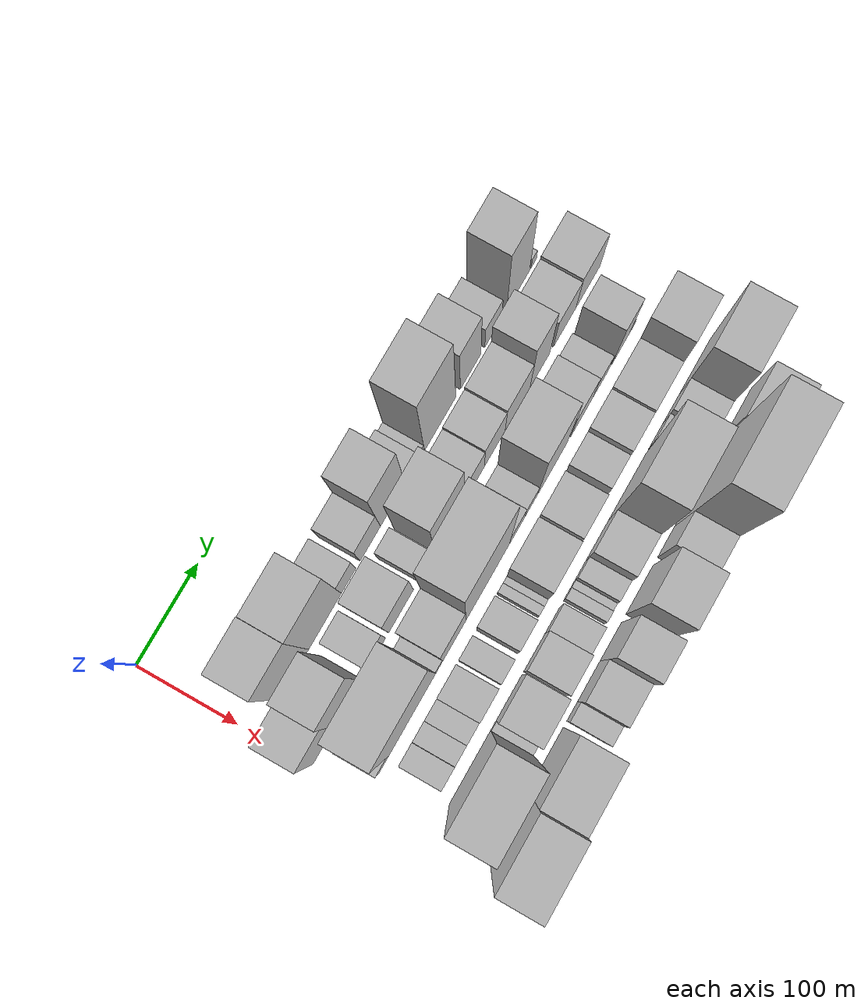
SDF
<sdf version="1.6">
 <world name="default">
  <model name="building_26">
   <static>1</static>
   <pose>100.0000 59.8532 0 0.000000 0.000000 0.000000</pose>
   <link name="link">
    <pose>0 0 72.00 0 0 0</pose>
    <collision name="collision"><geometry><box><size>40.0000 48.5433 144.0000</size></box></geometry></collision>
    <visual name="visual">
     <cast_shadows>0</cast_shadows>
     <geometry><box><size>40.0000 48.5433 144.0000</size></box></geometry>
     <material>
      <script>
       <uri>model://HANNAS_wall/materials/scripts</uri>
       <uri>model://HANNAS_wall/materials/textures</uri>
       <name>vrc/HANNAS_wall</name>
      </script>
     </material>
    </visual>
   </link>
  </model>
  <model name="building_27">
   <static>1</static>
   <pose>100.0000 111.6172 0 0.000000 0.000000 0.000000</pose>
   <link name="link">
    <pose>0 0 70.50 0 0 0</pose>
    <collision name="collision"><geometry><box><size>40.0000 54.9846 141.0000</size></box></geometry></collision>
    <visual name="visual">
     <cast_shadows>0</cast_shadows>
     <geometry><box><size>40.0000 54.9846 141.0000</size></box></geometry>
     <material>
      <script>
       <uri>model://HANNAS_wall/materials/scripts</uri>
       <uri>model://HANNAS_wall/materials/textures</uri>
       <name>vrc/HANNAS_wall</name>
      </script>
     </material>
    </visual>
   </link>
  </model>
  <model name="building_28">
   <static>1</static>
   <pose>100.0000 151.5574 0 0.000000 0.000000 0.000000</pose>
   <link name="link">
    <pose>0 0 24.00 0 0 0</pose>
    <collision name="collision"><geometry><box><size>40.0000 24.8957 48.0000</size></box></geometry></collision>
    <visual name="visual">
     <cast_shadows>0</cast_shadows>
     <geometry><box><size>40.0000 24.8957 48.0000</size></box></geometry>
     <material>
      <script>
       <uri>model://HANNAS_wall/materials/scripts</uri>
       <uri>model://HANNAS_wall/materials/textures</uri>
       <name>vrc/HANNAS_wall</name>
      </script>
     </material>
    </visual>
   </link>
  </model>
  <model name="building_29">
   <static>1</static>
   <pose>100.0000 188.3205 0 0.000000 0.000000 0.000000</pose>
   <link name="link">
    <pose>0 0 30.00 0 0 0</pose>
    <collision name="collision"><geometry><box><size>40.0000 34.6305 60.0000</size></box></geometry></collision>
    <visual name="visual">
     <cast_shadows>0</cast_shadows>
     <geometry><box><size>40.0000 34.6305 60.0000</size></box></geometry>
     <material>
      <script>
       <uri>model://HANNAS_wall/materials/scripts</uri>
       <uri>model://HANNAS_wall/materials/textures</uri>
       <name>vrc/HANNAS_wall</name>
      </script>
     </material>
    </visual>
   </link>
  </model>
  <model name="building_30">
   <static>1</static>
   <pose>100.0000 226.8834 0 0.000000 0.000000 0.000000</pose>
   <link name="link">
    <pose>0 0 67.50 0 0 0</pose>
    <collision name="collision"><geometry><box><size>40.0000 42.4952 135.0000</size></box></geometry></collision>
    <visual name="visual">
     <cast_shadows>0</cast_shadows>
     <geometry><box><size>40.0000 42.4952 135.0000</size></box></geometry>
     <material>
      <script>
       <uri>model://HANNAS_wall/materials/scripts</uri>
       <uri>model://HANNAS_wall/materials/textures</uri>
       <name>vrc/HANNAS_wall</name>
      </script>
     </material>
    </visual>
   </link>
  </model>
  <model name="building_31">
   <static>1</static>
   <pose>100.0000 259.4990 0 0.000000 0.000000 0.000000</pose>
   <link name="link">
    <pose>0 0 19.50 0 0 0</pose>
    <collision name="collision"><geometry><box><size>40.0000 22.7361 39.0000</size></box></geometry></collision>
    <visual name="visual">
     <cast_shadows>0</cast_shadows>
     <geometry><box><size>40.0000 22.7361 39.0000</size></box></geometry>
     <material>
      <script>
       <uri>model://HANNAS_wall/materials/scripts</uri>
       <uri>model://HANNAS_wall/materials/textures</uri>
       <name>vrc/HANNAS_wall</name>
      </script>
     </material>
    </visual>
   </link>
  </model>
  <model name="building_32">
   <static>1</static>
   <pose>100.0000 276.2242 0 0.000000 0.000000 0.000000</pose>
   <link name="link">
    <pose>0 0 12.00 0 0 0</pose>
    <collision name="collision"><geometry><box><size>40.0000 10.7142 24.0000</size></box></geometry></collision>
    <visual name="visual">
     <cast_shadows>0</cast_shadows>
     <geometry><box><size>40.0000 10.7142 24.0000</size></box></geometry>
     <material>
      <script>
       <uri>model://HANNAS_wall/materials/scripts</uri>
       <uri>model://HANNAS_wall/materials/textures</uri>
       <name>vrc/HANNAS_wall</name>
      </script>
     </material>
    </visual>
   </link>
  </model>
  <model name="building_33">
   <static>1</static>
   <pose>100.0000 308.8887 0 0.000000 0.000000 0.000000</pose>
   <link name="link">
    <pose>0 0 81.00 0 0 0</pose>
    <collision name="collision"><geometry><box><size>40.0000 54.6149 162.0000</size></box></geometry></collision>
    <visual name="visual">
     <cast_shadows>0</cast_shadows>
     <geometry><box><size>40.0000 54.6149 162.0000</size></box></geometry>
     <material>
      <script>
       <uri>model://HANNAS_wall/materials/scripts</uri>
       <uri>model://HANNAS_wall/materials/textures</uri>
       <name>vrc/HANNAS_wall</name>
      </script>
     </material>
    </visual>
   </link>
  </model>
  <model name="building_34">
   <static>1</static>
   <pose>100.0000 362.2740 0 0.000000 0.000000 0.000000</pose>
   <link name="link">
    <pose>0 0 52.50 0 0 0</pose>
    <collision name="collision"><geometry><box><size>40.0000 36.1556 105.0000</size></box></geometry></collision>
    <visual name="visual">
     <cast_shadows>0</cast_shadows>
     <geometry><box><size>40.0000 36.1556 105.0000</size></box></geometry>
     <material>
      <script>
       <uri>model://HANNAS_wall/materials/scripts</uri>
       <uri>model://HANNAS_wall/materials/textures</uri>
       <name>vrc/HANNAS_wall</name>
      </script>
     </material>
    </visual>
   </link>
  </model>
  <model name="building_35">
   <static>1</static>
   <pose>100.0000 402.2554 0 0.000000 0.000000 0.000000</pose>
   <link name="link">
    <pose>0 0 25.50 0 0 0</pose>
    <collision name="collision"><geometry><box><size>40.0000 29.8073 51.0000</size></box></geometry></collision>
    <visual name="visual">
     <cast_shadows>0</cast_shadows>
     <geometry><box><size>40.0000 29.8073 51.0000</size></box></geometry>
     <material>
      <script>
       <uri>model://HANNAS_wall/materials/scripts</uri>
       <uri>model://HANNAS_wall/materials/textures</uri>
       <name>vrc/HANNAS_wall</name>
      </script>
     </material>
    </visual>
   </link>
  </model>
  <model name="building_36">
   <static>1</static>
   <pose>100.0000 446.6684 0 0.000000 0.000000 0.000000</pose>
   <link name="link">
    <pose>0 0 66.00 0 0 0</pose>
    <collision name="collision"><geometry><box><size>40.0000 41.0188 132.0000</size></box></geometry></collision>
    <visual name="visual">
     <cast_shadows>0</cast_shadows>
     <geometry><box><size>40.0000 41.0188 132.0000</size></box></geometry>
     <material>
      <script>
       <uri>model://HANNAS_wall/materials/scripts</uri>
       <uri>model://HANNAS_wall/materials/textures</uri>
       <name>vrc/HANNAS_wall</name>
      </script>
     </material>
    </visual>
   </link>
  </model>
  <model name="building_37">
   <static>1</static>
   <pose>100.0000 474.8791 0 0.000000 0.000000 0.000000</pose>
   <link name="link">
    <pose>0 0 10.50 0 0 0</pose>
    <collision name="collision"><geometry><box><size>40.0000 9.4025 21.0000</size></box></geometry></collision>
    <visual name="visual">
     <cast_shadows>0</cast_shadows>
     <geometry><box><size>40.0000 9.4025 21.0000</size></box></geometry>
     <material>
      <script>
       <uri>model://HANNAS_wall/materials/scripts</uri>
       <uri>model://HANNAS_wall/materials/textures</uri>
       <name>vrc/HANNAS_wall</name>
      </script>
     </material>
    </visual>
   </link>
  </model>
  <model name="building_71">
   <static>1</static>
   <pose>152.0000 21.6704 0 0.000000 0.000000 0.000000</pose>
   <link name="link">
    <pose>0 0 55.50 0 0 0</pose>
    <collision name="collision"><geometry><box><size>40.0000 37.0842 111.0000</size></box></geometry></collision>
    <visual name="visual">
     <cast_shadows>0</cast_shadows>
     <geometry><box><size>40.0000 37.0842 111.0000</size></box></geometry>
     <material>
      <script>
       <uri>model://HANNAS_wall/materials/scripts</uri>
       <uri>model://HANNAS_wall/materials/textures</uri>
       <name>vrc/HANNAS_wall</name>
      </script>
     </material>
    </visual>
   </link>
  </model>
  <model name="building_72">
   <static>1</static>
   <pose>152.0000 62.4371 0 0.000000 0.000000 0.000000</pose>
   <link name="link">
    <pose>0 0 70.50 0 0 0</pose>
    <collision name="collision"><geometry><box><size>40.0000 44.4492 141.0000</size></box></geometry></collision>
    <visual name="visual">
     <cast_shadows>0</cast_shadows>
     <geometry><box><size>40.0000 44.4492 141.0000</size></box></geometry>
     <material>
      <script>
       <uri>model://HANNAS_wall/materials/scripts</uri>
       <uri>model://HANNAS_wall/materials/textures</uri>
       <name>vrc/HANNAS_wall</name>
      </script>
     </material>
    </visual>
   </link>
  </model>
  <model name="building_73">
   <static>1</static>
   <pose>152.0000 109.7994 0 0.000000 0.000000 0.000000</pose>
   <link name="link">
    <pose>0 0 28.50 0 0 0</pose>
    <collision name="collision"><geometry><box><size>40.0000 30.2754 57.0000</size></box></geometry></collision>
    <visual name="visual">
     <cast_shadows>0</cast_shadows>
     <geometry><box><size>40.0000 30.2754 57.0000</size></box></geometry>
     <material>
      <script>
       <uri>model://HANNAS_wall/materials/scripts</uri>
       <uri>model://HANNAS_wall/materials/textures</uri>
       <name>vrc/HANNAS_wall</name>
      </script>
     </material>
    </visual>
   </link>
  </model>
  <model name="building_74">
   <static>1</static>
   <pose>152.0000 151.1428 0 0.000000 0.000000 0.000000</pose>
   <link name="link">
    <pose>0 0 42.00 0 0 0</pose>
    <collision name="collision"><geometry><box><size>40.0000 42.4115 84.0000</size></box></geometry></collision>
    <visual name="visual">
     <cast_shadows>0</cast_shadows>
     <geometry><box><size>40.0000 42.4115 84.0000</size></box></geometry>
     <material>
      <script>
       <uri>model://HANNAS_wall/materials/scripts</uri>
       <uri>model://HANNAS_wall/materials/textures</uri>
       <name>vrc/HANNAS_wall</name>
      </script>
     </material>
    </visual>
   </link>
  </model>
  <model name="building_75">
   <static>1</static>
   <pose>152.0000 192.7440 0 0.000000 0.000000 0.000000</pose>
   <link name="link">
    <pose>0 0 21.00 0 0 0</pose>
    <collision name="collision"><geometry><box><size>40.0000 24.7909 42.0000</size></box></geometry></collision>
    <visual name="visual">
     <cast_shadows>0</cast_shadows>
     <geometry><box><size>40.0000 24.7909 42.0000</size></box></geometry>
     <material>
      <script>
       <uri>model://HANNAS_wall/materials/scripts</uri>
       <uri>model://HANNAS_wall/materials/textures</uri>
       <name>vrc/HANNAS_wall</name>
      </script>
     </material>
    </visual>
   </link>
  </model>
  <model name="building_76">
   <static>1</static>
   <pose>152.0000 235.0382 0 0.000000 0.000000 0.000000</pose>
   <link name="link">
    <pose>0 0 69.00 0 0 0</pose>
    <collision name="collision"><geometry><box><size>40.0000 51.7974 138.0000</size></box></geometry></collision>
    <visual name="visual">
     <cast_shadows>0</cast_shadows>
     <geometry><box><size>40.0000 51.7974 138.0000</size></box></geometry>
     <material>
      <script>
       <uri>model://HANNAS_wall/materials/scripts</uri>
       <uri>model://HANNAS_wall/materials/textures</uri>
       <name>vrc/HANNAS_wall</name>
      </script>
     </material>
    </visual>
   </link>
  </model>
  <model name="building_77">
   <static>1</static>
   <pose>152.0000 277.9632 0 0.000000 0.000000 0.000000</pose>
   <link name="link">
    <pose>0 0 31.50 0 0 0</pose>
    <collision name="collision"><geometry><box><size>40.0000 34.0527 63.0000</size></box></geometry></collision>
    <visual name="visual">
     <cast_shadows>0</cast_shadows>
     <geometry><box><size>40.0000 34.0527 63.0000</size></box></geometry>
     <material>
      <script>
       <uri>model://HANNAS_wall/materials/scripts</uri>
       <uri>model://HANNAS_wall/materials/textures</uri>
       <name>vrc/HANNAS_wall</name>
      </script>
     </material>
    </visual>
   </link>
  </model>
  <model name="building_78">
   <static>1</static>
   <pose>152.0000 313.0679 0 0.000000 0.000000 0.000000</pose>
   <link name="link">
    <pose>0 0 34.50 0 0 0</pose>
    <collision name="collision"><geometry><box><size>40.0000 36.1565 69.0000</size></box></geometry></collision>
    <visual name="visual">
     <cast_shadows>0</cast_shadows>
     <geometry><box><size>40.0000 36.1565 69.0000</size></box></geometry>
     <material>
      <script>
       <uri>model://HANNAS_wall/materials/scripts</uri>
       <uri>model://HANNAS_wall/materials/textures</uri>
       <name>vrc/HANNAS_wall</name>
      </script>
     </material>
    </visual>
   </link>
  </model>
  <model name="building_79">
   <static>1</static>
   <pose>152.0000 353.2291 0 0.000000 0.000000 0.000000</pose>
   <link name="link">
    <pose>0 0 37.50 0 0 0</pose>
    <collision name="collision"><geometry><box><size>40.0000 44.1659 75.0000</size></box></geometry></collision>
    <visual name="visual">
     <cast_shadows>0</cast_shadows>
     <geometry><box><size>40.0000 44.1659 75.0000</size></box></geometry>
     <material>
      <script>
       <uri>model://HANNAS_wall/materials/scripts</uri>
       <uri>model://HANNAS_wall/materials/textures</uri>
       <name>vrc/HANNAS_wall</name>
      </script>
     </material>
    </visual>
   </link>
  </model>
  <model name="building_80">
   <static>1</static>
   <pose>152.0000 392.7489 0 0.000000 0.000000 0.000000</pose>
   <link name="link">
    <pose>0 0 57.00 0 0 0</pose>
    <collision name="collision"><geometry><box><size>40.0000 34.8737 114.0000</size></box></geometry></collision>
    <visual name="visual">
     <cast_shadows>0</cast_shadows>
     <geometry><box><size>40.0000 34.8737 114.0000</size></box></geometry>
     <material>
      <script>
       <uri>model://HANNAS_wall/materials/scripts</uri>
       <uri>model://HANNAS_wall/materials/textures</uri>
       <name>vrc/HANNAS_wall</name>
      </script>
     </material>
    </visual>
   </link>
  </model>
  <model name="building_81">
   <static>1</static>
   <pose>152.0000 437.3306 0 0.000000 0.000000 0.000000</pose>
   <link name="link">
    <pose>0 0 34.50 0 0 0</pose>
    <collision name="collision"><geometry><box><size>40.0000 40.2897 69.0000</size></box></geometry></collision>
    <visual name="visual">
     <cast_shadows>0</cast_shadows>
     <geometry><box><size>40.0000 40.2897 69.0000</size></box></geometry>
     <material>
      <script>
       <uri>model://HANNAS_wall/materials/scripts</uri>
       <uri>model://HANNAS_wall/materials/textures</uri>
       <name>vrc/HANNAS_wall</name>
      </script>
     </material>
    </visual>
   </link>
  </model>
  <model name="building_82">
   <static>1</static>
   <pose>152.0000 479.6560 0 0.000000 0.000000 0.000000</pose>
   <link name="link">
    <pose>0 0 37.50 0 0 0</pose>
    <collision name="collision"><geometry><box><size>40.0000 44.3611 75.0000</size></box></geometry></collision>
    <visual name="visual">
     <cast_shadows>0</cast_shadows>
     <geometry><box><size>40.0000 44.3611 75.0000</size></box></geometry>
     <material>
      <script>
       <uri>model://HANNAS_wall/materials/scripts</uri>
       <uri>model://HANNAS_wall/materials/textures</uri>
       <name>vrc/HANNAS_wall</name>
      </script>
     </material>
    </visual>
   </link>
  </model>
  <model name="building_121">
   <static>1</static>
   <pose>204.0000 31.6830 0 0.000000 0.000000 0.000000</pose>
   <link name="link">
    <pose>0 0 18.00 0 0 0</pose>
    <collision name="collision"><geometry><box><size>40.0000 18.2940 36.0000</size></box></geometry></collision>
    <visual name="visual">
     <cast_shadows>0</cast_shadows>
     <geometry><box><size>40.0000 18.2940 36.0000</size></box></geometry>
     <material>
      <script>
       <uri>model://HANNAS_wall/materials/scripts</uri>
       <uri>model://HANNAS_wall/materials/textures</uri>
       <name>vrc/HANNAS_wall</name>
      </script>
     </material>
    </visual>
   </link>
  </model>
  <model name="building_122">
   <static>1</static>
   <pose>204.0000 80.5087 0 0.000000 0.000000 0.000000</pose>
   <link name="link">
    <pose>0 0 102.00 0 0 0</pose>
    <collision name="collision"><geometry><box><size>40.0000 79.3574 204.0000</size></box></geometry></collision>
    <visual name="visual">
     <cast_shadows>0</cast_shadows>
     <geometry><box><size>40.0000 79.3574 204.0000</size></box></geometry>
     <material>
      <script>
       <uri>model://HANNAS_wall/materials/scripts</uri>
       <uri>model://HANNAS_wall/materials/textures</uri>
       <name>vrc/HANNAS_wall</name>
      </script>
     </material>
    </visual>
   </link>
  </model>
  <model name="building_123">
   <static>1</static>
   <pose>204.0000 126.0882 0 0.000000 0.000000 0.000000</pose>
   <link name="link">
    <pose>0 0 12.00 0 0 0</pose>
    <collision name="collision"><geometry><box><size>40.0000 11.8014 24.0000</size></box></geometry></collision>
    <visual name="visual">
     <cast_shadows>0</cast_shadows>
     <geometry><box><size>40.0000 11.8014 24.0000</size></box></geometry>
     <material>
      <script>
       <uri>model://HANNAS_wall/materials/scripts</uri>
       <uri>model://HANNAS_wall/materials/textures</uri>
       <name>vrc/HANNAS_wall</name>
      </script>
     </material>
    </visual>
   </link>
  </model>
  <model name="building_124">
   <static>1</static>
   <pose>204.0000 151.6730 0 0.000000 0.000000 0.000000</pose>
   <link name="link">
    <pose>0 0 49.50 0 0 0</pose>
    <collision name="collision"><geometry><box><size>40.0000 39.3682 99.0000</size></box></geometry></collision>
    <visual name="visual">
     <cast_shadows>0</cast_shadows>
     <geometry><box><size>40.0000 39.3682 99.0000</size></box></geometry>
     <material>
      <script>
       <uri>model://HANNAS_wall/materials/scripts</uri>
       <uri>model://HANNAS_wall/materials/textures</uri>
       <name>vrc/HANNAS_wall</name>
      </script>
     </material>
    </visual>
   </link>
  </model>
  <model name="building_125">
   <static>1</static>
   <pose>204.0000 208.8136 0 0.000000 0.000000 0.000000</pose>
   <link name="link">
    <pose>0 0 112.50 0 0 0</pose>
    <collision name="collision"><geometry><box><size>40.0000 74.9130 225.0000</size></box></geometry></collision>
    <visual name="visual">
     <cast_shadows>0</cast_shadows>
     <geometry><box><size>40.0000 74.9130 225.0000</size></box></geometry>
     <material>
      <script>
       <uri>model://HANNAS_wall/materials/scripts</uri>
       <uri>model://HANNAS_wall/materials/textures</uri>
       <name>vrc/HANNAS_wall</name>
      </script>
     </material>
    </visual>
   </link>
  </model>
  <model name="building_126">
   <static>1</static>
   <pose>204.0000 259.9060 0 0.000000 0.000000 0.000000</pose>
   <link name="link">
    <pose>0 0 24.00 0 0 0</pose>
    <collision name="collision"><geometry><box><size>40.0000 27.2720 48.0000</size></box></geometry></collision>
    <visual name="visual">
     <cast_shadows>0</cast_shadows>
     <geometry><box><size>40.0000 27.2720 48.0000</size></box></geometry>
     <material>
      <script>
       <uri>model://HANNAS_wall/materials/scripts</uri>
       <uri>model://HANNAS_wall/materials/textures</uri>
       <name>vrc/HANNAS_wall</name>
      </script>
     </material>
    </visual>
   </link>
  </model>
  <model name="building_127">
   <static>1</static>
   <pose>204.0000 284.5124 0 0.000000 0.000000 0.000000</pose>
   <link name="link">
    <pose>0 0 21.00 0 0 0</pose>
    <collision name="collision"><geometry><box><size>40.0000 21.9408 42.0000</size></box></geometry></collision>
    <visual name="visual">
     <cast_shadows>0</cast_shadows>
     <geometry><box><size>40.0000 21.9408 42.0000</size></box></geometry>
     <material>
      <script>
       <uri>model://HANNAS_wall/materials/scripts</uri>
       <uri>model://HANNAS_wall/materials/textures</uri>
       <name>vrc/HANNAS_wall</name>
      </script>
     </material>
    </visual>
   </link>
  </model>
  <model name="building_128">
   <static>1</static>
   <pose>204.0000 321.7038 0 0.000000 0.000000 0.000000</pose>
   <link name="link">
    <pose>0 0 75.00 0 0 0</pose>
    <collision name="collision"><geometry><box><size>40.0000 52.4421 150.0000</size></box></geometry></collision>
    <visual name="visual">
     <cast_shadows>0</cast_shadows>
     <geometry><box><size>40.0000 52.4421 150.0000</size></box></geometry>
     <material>
      <script>
       <uri>model://HANNAS_wall/materials/scripts</uri>
       <uri>model://HANNAS_wall/materials/textures</uri>
       <name>vrc/HANNAS_wall</name>
      </script>
     </material>
    </visual>
   </link>
  </model>
  <model name="building_129">
   <static>1</static>
   <pose>204.0000 374.4119 0 0.000000 0.000000 0.000000</pose>
   <link name="link">
    <pose>0 0 34.50 0 0 0</pose>
    <collision name="collision"><geometry><box><size>40.0000 38.9741 69.0000</size></box></geometry></collision>
    <visual name="visual">
     <cast_shadows>0</cast_shadows>
     <geometry><box><size>40.0000 38.9741 69.0000</size></box></geometry>
     <material>
      <script>
       <uri>model://HANNAS_wall/materials/scripts</uri>
       <uri>model://HANNAS_wall/materials/textures</uri>
       <name>vrc/HANNAS_wall</name>
      </script>
     </material>
    </visual>
   </link>
  </model>
  <model name="building_130">
   <static>1</static>
   <pose>204.0000 408.0770 0 0.000000 0.000000 0.000000</pose>
   <link name="link">
    <pose>0 0 24.00 0 0 0</pose>
    <collision name="collision"><geometry><box><size>40.0000 28.3561 48.0000</size></box></geometry></collision>
    <visual name="visual">
     <cast_shadows>0</cast_shadows>
     <geometry><box><size>40.0000 28.3561 48.0000</size></box></geometry>
     <material>
      <script>
       <uri>model://HANNAS_wall/materials/scripts</uri>
       <uri>model://HANNAS_wall/materials/textures</uri>
       <name>vrc/HANNAS_wall</name>
      </script>
     </material>
    </visual>
   </link>
  </model>
  <model name="building_131">
   <static>1</static>
   <pose>204.0000 444.3280 0 0.000000 0.000000 0.000000</pose>
   <link name="link">
    <pose>0 0 49.50 0 0 0</pose>
    <collision name="collision"><geometry><box><size>40.0000 30.1457 99.0000</size></box></geometry></collision>
    <visual name="visual">
     <cast_shadows>0</cast_shadows>
     <geometry><box><size>40.0000 30.1457 99.0000</size></box></geometry>
     <material>
      <script>
       <uri>model://HANNAS_wall/materials/scripts</uri>
       <uri>model://HANNAS_wall/materials/textures</uri>
       <name>vrc/HANNAS_wall</name>
      </script>
     </material>
    </visual>
   </link>
  </model>
  <model name="building_132">
   <static>1</static>
   <pose>204.0000 463.6852 0 0.000000 0.000000 0.000000</pose>
   <link name="link">
    <pose>0 0 10.50 0 0 0</pose>
    <collision name="collision"><geometry><box><size>40.0000 8.5686 21.0000</size></box></geometry></collision>
    <visual name="visual">
     <cast_shadows>0</cast_shadows>
     <geometry><box><size>40.0000 8.5686 21.0000</size></box></geometry>
     <material>
      <script>
       <uri>model://HANNAS_wall/materials/scripts</uri>
       <uri>model://HANNAS_wall/materials/textures</uri>
       <name>vrc/HANNAS_wall</name>
      </script>
     </material>
    </visual>
   </link>
  </model>
  <model name="building_171">
   <static>1</static>
   <pose>256.0000 51.3563 0 0.000000 0.000000 0.000000</pose>
   <link name="link">
    <pose>0 0 21.00 0 0 0</pose>
    <collision name="collision"><geometry><box><size>40.0000 22.1200 42.0000</size></box></geometry></collision>
    <visual name="visual">
     <cast_shadows>0</cast_shadows>
     <geometry><box><size>40.0000 22.1200 42.0000</size></box></geometry>
     <material>
      <script>
       <uri>model://HANNAS_wall/materials/scripts</uri>
       <uri>model://HANNAS_wall/materials/textures</uri>
       <name>vrc/HANNAS_wall</name>
      </script>
     </material>
    </visual>
   </link>
  </model>
  <model name="building_172">
   <static>1</static>
   <pose>256.0000 72.2350 0 0.000000 0.000000 0.000000</pose>
   <link name="link">
    <pose>0 0 19.50 0 0 0</pose>
    <collision name="collision"><geometry><box><size>40.0000 19.6375 39.0000</size></box></geometry></collision>
    <visual name="visual">
     <cast_shadows>0</cast_shadows>
     <geometry><box><size>40.0000 19.6375 39.0000</size></box></geometry>
     <material>
      <script>
       <uri>model://HANNAS_wall/materials/scripts</uri>
       <uri>model://HANNAS_wall/materials/textures</uri>
       <name>vrc/HANNAS_wall</name>
      </script>
     </material>
    </visual>
   </link>
  </model>
  <model name="building_173">
   <static>1</static>
   <pose>256.0000 92.5784 0 0.000000 0.000000 0.000000</pose>
   <link name="link">
    <pose>0 0 19.50 0 0 0</pose>
    <collision name="collision"><geometry><box><size>40.0000 21.0493 39.0000</size></box></geometry></collision>
    <visual name="visual">
     <cast_shadows>0</cast_shadows>
     <geometry><box><size>40.0000 21.0493 39.0000</size></box></geometry>
     <material>
      <script>
       <uri>model://HANNAS_wall/materials/scripts</uri>
       <uri>model://HANNAS_wall/materials/textures</uri>
       <name>vrc/HANNAS_wall</name>
      </script>
     </material>
    </visual>
   </link>
  </model>
  <model name="building_174">
   <static>1</static>
   <pose>256.0000 118.8743 0 0.000000 0.000000 0.000000</pose>
   <link name="link">
    <pose>0 0 27.00 0 0 0</pose>
    <collision name="collision"><geometry><box><size>40.0000 31.5424 54.0000</size></box></geometry></collision>
    <visual name="visual">
     <cast_shadows>0</cast_shadows>
     <geometry><box><size>40.0000 31.5424 54.0000</size></box></geometry>
     <material>
      <script>
       <uri>model://HANNAS_wall/materials/scripts</uri>
       <uri>model://HANNAS_wall/materials/textures</uri>
       <name>vrc/HANNAS_wall</name>
      </script>
     </material>
    </visual>
   </link>
  </model>
  <model name="building_175">
   <static>1</static>
   <pose>256.0000 150.2202 0 0.000000 0.000000 0.000000</pose>
   <link name="link">
    <pose>0 0 22.50 0 0 0</pose>
    <collision name="collision"><geometry><box><size>40.0000 23.1495 45.0000</size></box></geometry></collision>
    <visual name="visual">
     <cast_shadows>0</cast_shadows>
     <geometry><box><size>40.0000 23.1495 45.0000</size></box></geometry>
     <material>
      <script>
       <uri>model://HANNAS_wall/materials/scripts</uri>
       <uri>model://HANNAS_wall/materials/textures</uri>
       <name>vrc/HANNAS_wall</name>
      </script>
     </material>
    </visual>
   </link>
  </model>
  <model name="building_176">
   <static>1</static>
   <pose>256.0000 183.4563 0 0.000000 0.000000 0.000000</pose>
   <link name="link">
    <pose>0 0 28.50 0 0 0</pose>
    <collision name="collision"><geometry><box><size>40.0000 29.3226 57.0000</size></box></geometry></collision>
    <visual name="visual">
     <cast_shadows>0</cast_shadows>
     <geometry><box><size>40.0000 29.3226 57.0000</size></box></geometry>
     <material>
      <script>
       <uri>model://HANNAS_wall/materials/scripts</uri>
       <uri>model://HANNAS_wall/materials/textures</uri>
       <name>vrc/HANNAS_wall</name>
      </script>
     </material>
    </visual>
   </link>
  </model>
  <model name="building_177">
   <static>1</static>
   <pose>256.0000 208.7952 0 0.000000 0.000000 0.000000</pose>
   <link name="link">
    <pose>0 0 10.50 0 0 0</pose>
    <collision name="collision"><geometry><box><size>40.0000 9.3552 21.0000</size></box></geometry></collision>
    <visual name="visual">
     <cast_shadows>0</cast_shadows>
     <geometry><box><size>40.0000 9.3552 21.0000</size></box></geometry>
     <material>
      <script>
       <uri>model://HANNAS_wall/materials/scripts</uri>
       <uri>model://HANNAS_wall/materials/textures</uri>
       <name>vrc/HANNAS_wall</name>
      </script>
     </material>
    </visual>
   </link>
  </model>
  <model name="building_178">
   <static>1</static>
   <pose>256.0000 217.0879 0 0.000000 0.000000 0.000000</pose>
   <link name="link">
    <pose>0 0 7.50 0 0 0</pose>
    <collision name="collision"><geometry><box><size>40.0000 7.2303 15.0000</size></box></geometry></collision>
    <visual name="visual">
     <cast_shadows>0</cast_shadows>
     <geometry><box><size>40.0000 7.2303 15.0000</size></box></geometry>
     <material>
      <script>
       <uri>model://HANNAS_wall/materials/scripts</uri>
       <uri>model://HANNAS_wall/materials/textures</uri>
       <name>vrc/HANNAS_wall</name>
      </script>
     </material>
    </visual>
   </link>
  </model>
  <model name="building_179">
   <static>1</static>
   <pose>256.0000 244.4377 0 0.000000 0.000000 0.000000</pose>
   <link name="link">
    <pose>0 0 40.50 0 0 0</pose>
    <collision name="collision"><geometry><box><size>40.0000 47.4692 81.0000</size></box></geometry></collision>
    <visual name="visual">
     <cast_shadows>0</cast_shadows>
     <geometry><box><size>40.0000 47.4692 81.0000</size></box></geometry>
     <material>
      <script>
       <uri>model://HANNAS_wall/materials/scripts</uri>
       <uri>model://HANNAS_wall/materials/textures</uri>
       <name>vrc/HANNAS_wall</name>
      </script>
     </material>
    </visual>
   </link>
  </model>
  <model name="building_180">
   <static>1</static>
   <pose>256.0000 292.7930 0 0.000000 0.000000 0.000000</pose>
   <link name="link">
    <pose>0 0 34.50 0 0 0</pose>
    <collision name="collision"><geometry><box><size>40.0000 41.2415 69.0000</size></box></geometry></collision>
    <visual name="visual">
     <cast_shadows>0</cast_shadows>
     <geometry><box><size>40.0000 41.2415 69.0000</size></box></geometry>
     <material>
      <script>
       <uri>model://HANNAS_wall/materials/scripts</uri>
       <uri>model://HANNAS_wall/materials/textures</uri>
       <name>vrc/HANNAS_wall</name>
      </script>
     </material>
    </visual>
   </link>
  </model>
  <model name="building_181">
   <static>1</static>
   <pose>256.0000 337.4040 0 0.000000 0.000000 0.000000</pose>
   <link name="link">
    <pose>0 0 28.50 0 0 0</pose>
    <collision name="collision"><geometry><box><size>40.0000 31.9804 57.0000</size></box></geometry></collision>
    <visual name="visual">
     <cast_shadows>0</cast_shadows>
     <geometry><box><size>40.0000 31.9804 57.0000</size></box></geometry>
     <material>
      <script>
       <uri>model://HANNAS_wall/materials/scripts</uri>
       <uri>model://HANNAS_wall/materials/textures</uri>
       <name>vrc/HANNAS_wall</name>
      </script>
     </material>
    </visual>
   </link>
  </model>
  <model name="building_182">
   <static>1</static>
   <pose>256.0000 371.7634 0 0.000000 0.000000 0.000000</pose>
   <link name="link">
    <pose>0 0 36.00 0 0 0</pose>
    <collision name="collision"><geometry><box><size>40.0000 36.7384 72.0000</size></box></geometry></collision>
    <visual name="visual">
     <cast_shadows>0</cast_shadows>
     <geometry><box><size>40.0000 36.7384 72.0000</size></box></geometry>
     <material>
      <script>
       <uri>model://HANNAS_wall/materials/scripts</uri>
       <uri>model://HANNAS_wall/materials/textures</uri>
       <name>vrc/HANNAS_wall</name>
      </script>
     </material>
    </visual>
   </link>
  </model>
  <model name="building_183">
   <static>1</static>
   <pose>256.0000 413.4472 0 0.000000 0.000000 0.000000</pose>
   <link name="link">
    <pose>0 0 39.00 0 0 0</pose>
    <collision name="collision"><geometry><box><size>40.0000 46.6291 78.0000</size></box></geometry></collision>
    <visual name="visual">
     <cast_shadows>0</cast_shadows>
     <geometry><box><size>40.0000 46.6291 78.0000</size></box></geometry>
     <material>
      <script>
       <uri>model://HANNAS_wall/materials/scripts</uri>
       <uri>model://HANNAS_wall/materials/textures</uri>
       <name>vrc/HANNAS_wall</name>
      </script>
     </material>
    </visual>
   </link>
  </model>
  <model name="building_184">
   <static>1</static>
   <pose>256.0000 458.1449 0 0.000000 0.000000 0.000000</pose>
   <link name="link">
    <pose>0 0 66.00 0 0 0</pose>
    <collision name="collision"><geometry><box><size>40.0000 42.7664 132.0000</size></box></geometry></collision>
    <visual name="visual">
     <cast_shadows>0</cast_shadows>
     <geometry><box><size>40.0000 42.7664 132.0000</size></box></geometry>
     <material>
      <script>
       <uri>model://HANNAS_wall/materials/scripts</uri>
       <uri>model://HANNAS_wall/materials/textures</uri>
       <name>vrc/HANNAS_wall</name>
      </script>
     </material>
    </visual>
   </link>
  </model>
  <model name="building_222">
   <static>1</static>
   <pose>308.0000 66.2620 0 0.000000 0.000000 0.000000</pose>
   <link name="link">
    <pose>0 0 111.00 0 0 0</pose>
    <collision name="collision"><geometry><box><size>40.0000 70.3853 222.0000</size></box></geometry></collision>
    <visual name="visual">
     <cast_shadows>0</cast_shadows>
     <geometry><box><size>40.0000 70.3853 222.0000</size></box></geometry>
     <material>
      <script>
       <uri>model://HANNAS_wall/materials/scripts</uri>
       <uri>model://HANNAS_wall/materials/textures</uri>
       <name>vrc/HANNAS_wall</name>
      </script>
     </material>
    </visual>
   </link>
  </model>
  <model name="building_223">
   <static>1</static>
   <pose>308.0000 106.1286 0 0.000000 0.000000 0.000000</pose>
   <link name="link">
    <pose>0 0 10.50 0 0 0</pose>
    <collision name="collision"><geometry><box><size>40.0000 9.3480 21.0000</size></box></geometry></collision>
    <visual name="visual">
     <cast_shadows>0</cast_shadows>
     <geometry><box><size>40.0000 9.3480 21.0000</size></box></geometry>
     <material>
      <script>
       <uri>model://HANNAS_wall/materials/scripts</uri>
       <uri>model://HANNAS_wall/materials/textures</uri>
       <name>vrc/HANNAS_wall</name>
      </script>
     </material>
    </visual>
   </link>
  </model>
  <model name="building_224">
   <static>1</static>
   <pose>308.0000 132.8977 0 0.000000 0.000000 0.000000</pose>
   <link name="link">
    <pose>0 0 42.00 0 0 0</pose>
    <collision name="collision"><geometry><box><size>40.0000 44.1903 84.0000</size></box></geometry></collision>
    <visual name="visual">
     <cast_shadows>0</cast_shadows>
     <geometry><box><size>40.0000 44.1903 84.0000</size></box></geometry>
     <material>
      <script>
       <uri>model://HANNAS_wall/materials/scripts</uri>
       <uri>model://HANNAS_wall/materials/textures</uri>
       <name>vrc/HANNAS_wall</name>
      </script>
     </material>
    </visual>
   </link>
  </model>
  <model name="building_225">
   <static>1</static>
   <pose>308.0000 176.4152 0 0.000000 0.000000 0.000000</pose>
   <link name="link">
    <pose>0 0 33.00 0 0 0</pose>
    <collision name="collision"><geometry><box><size>40.0000 36.8447 66.0000</size></box></geometry></collision>
    <visual name="visual">
     <cast_shadows>0</cast_shadows>
     <geometry><box><size>40.0000 36.8447 66.0000</size></box></geometry>
     <material>
      <script>
       <uri>model://HANNAS_wall/materials/scripts</uri>
       <uri>model://HANNAS_wall/materials/textures</uri>
       <name>vrc/HANNAS_wall</name>
      </script>
     </material>
    </visual>
   </link>
  </model>
  <model name="building_226">
   <static>1</static>
   <pose>308.0000 208.1064 0 0.000000 0.000000 0.000000</pose>
   <link name="link">
    <pose>0 0 22.50 0 0 0</pose>
    <collision name="collision"><geometry><box><size>40.0000 26.5377 45.0000</size></box></geometry></collision>
    <visual name="visual">
     <cast_shadows>0</cast_shadows>
     <geometry><box><size>40.0000 26.5377 45.0000</size></box></geometry>
     <material>
      <script>
       <uri>model://HANNAS_wall/materials/scripts</uri>
       <uri>model://HANNAS_wall/materials/textures</uri>
       <name>vrc/HANNAS_wall</name>
      </script>
     </material>
    </visual>
   </link>
  </model>
  <model name="building_227">
   <static>1</static>
   <pose>308.0000 232.8546 0 0.000000 0.000000 0.000000</pose>
   <link name="link">
    <pose>0 0 12.00 0 0 0</pose>
    <collision name="collision"><geometry><box><size>40.0000 10.9585 24.0000</size></box></geometry></collision>
    <visual name="visual">
     <cast_shadows>0</cast_shadows>
     <geometry><box><size>40.0000 10.9585 24.0000</size></box></geometry>
     <material>
      <script>
       <uri>model://HANNAS_wall/materials/scripts</uri>
       <uri>model://HANNAS_wall/materials/textures</uri>
       <name>vrc/HANNAS_wall</name>
      </script>
     </material>
    </visual>
   </link>
  </model>
  <model name="building_228">
   <static>1</static>
   <pose>308.0000 242.3555 0 0.000000 0.000000 0.000000</pose>
   <link name="link">
    <pose>0 0 9.00 0 0 0</pose>
    <collision name="collision"><geometry><box><size>40.0000 8.0434 18.0000</size></box></geometry></collision>
    <visual name="visual">
     <cast_shadows>0</cast_shadows>
     <geometry><box><size>40.0000 8.0434 18.0000</size></box></geometry>
     <material>
      <script>
       <uri>model://HANNAS_wall/materials/scripts</uri>
       <uri>model://HANNAS_wall/materials/textures</uri>
       <name>vrc/HANNAS_wall</name>
      </script>
     </material>
    </visual>
   </link>
  </model>
  <model name="building_229">
   <static>1</static>
   <pose>308.0000 256.4591 0 0.000000 0.000000 0.000000</pose>
   <link name="link">
    <pose>0 0 18.00 0 0 0</pose>
    <collision name="collision"><geometry><box><size>40.0000 20.1637 36.0000</size></box></geometry></collision>
    <visual name="visual">
     <cast_shadows>0</cast_shadows>
     <geometry><box><size>40.0000 20.1637 36.0000</size></box></geometry>
     <material>
      <script>
       <uri>model://HANNAS_wall/materials/scripts</uri>
       <uri>model://HANNAS_wall/materials/textures</uri>
       <name>vrc/HANNAS_wall</name>
      </script>
     </material>
    </visual>
   </link>
  </model>
  <model name="building_230">
   <static>1</static>
   <pose>308.0000 286.3737 0 0.000000 0.000000 0.000000</pose>
   <link name="link">
    <pose>0 0 34.50 0 0 0</pose>
    <collision name="collision"><geometry><box><size>40.0000 39.6655 69.0000</size></box></geometry></collision>
    <visual name="visual">
     <cast_shadows>0</cast_shadows>
     <geometry><box><size>40.0000 39.6655 69.0000</size></box></geometry>
     <material>
      <script>
       <uri>model://HANNAS_wall/materials/scripts</uri>
       <uri>model://HANNAS_wall/materials/textures</uri>
       <name>vrc/HANNAS_wall</name>
      </script>
     </material>
    </visual>
   </link>
  </model>
  <model name="building_231">
   <static>1</static>
   <pose>308.0000 340.2815 0 0.000000 0.000000 0.000000</pose>
   <link name="link">
    <pose>0 0 99.00 0 0 0</pose>
    <collision name="collision"><geometry><box><size>40.0000 68.1500 198.0000</size></box></geometry></collision>
    <visual name="visual">
     <cast_shadows>0</cast_shadows>
     <geometry><box><size>40.0000 68.1500 198.0000</size></box></geometry>
     <material>
      <script>
       <uri>model://HANNAS_wall/materials/scripts</uri>
       <uri>model://HANNAS_wall/materials/textures</uri>
       <name>vrc/HANNAS_wall</name>
      </script>
     </material>
    </visual>
   </link>
  </model>
  <model name="building_232">
   <static>1</static>
   <pose>308.0000 390.8756 0 0.000000 0.000000 0.000000</pose>
   <link name="link">
    <pose>0 0 22.50 0 0 0</pose>
    <collision name="collision"><geometry><box><size>40.0000 25.0383 45.0000</size></box></geometry></collision>
    <visual name="visual">
     <cast_shadows>0</cast_shadows>
     <geometry><box><size>40.0000 25.0383 45.0000</size></box></geometry>
     <material>
      <script>
       <uri>model://HANNAS_wall/materials/scripts</uri>
       <uri>model://HANNAS_wall/materials/textures</uri>
       <name>vrc/HANNAS_wall</name>
      </script>
     </material>
    </visual>
   </link>
  </model>
  <model name="building_233">
   <static>1</static>
   <pose>308.0000 418.5465 0 0.000000 0.000000 0.000000</pose>
   <link name="link">
    <pose>0 0 30.00 0 0 0</pose>
    <collision name="collision"><geometry><box><size>40.0000 30.3036 60.0000</size></box></geometry></collision>
    <visual name="visual">
     <cast_shadows>0</cast_shadows>
     <geometry><box><size>40.0000 30.3036 60.0000</size></box></geometry>
     <material>
      <script>
       <uri>model://HANNAS_wall/materials/scripts</uri>
       <uri>model://HANNAS_wall/materials/textures</uri>
       <name>vrc/HANNAS_wall</name>
      </script>
     </material>
    </visual>
   </link>
  </model>
  <model name="building_234">
   <static>1</static>
   <pose>308.0000 462.8063 0 0.000000 0.000000 0.000000</pose>
   <link name="link">
    <pose>0 0 75.00 0 0 0</pose>
    <collision name="collision"><geometry><box><size>40.0000 58.2160 150.0000</size></box></geometry></collision>
    <visual name="visual">
     <cast_shadows>0</cast_shadows>
     <geometry><box><size>40.0000 58.2160 150.0000</size></box></geometry>
     <material>
      <script>
       <uri>model://HANNAS_wall/materials/scripts</uri>
       <uri>model://HANNAS_wall/materials/textures</uri>
       <name>vrc/HANNAS_wall</name>
      </script>
     </material>
    </visual>
   </link>
  </model>
  <model name="building_270">
   <static>1</static>
   <pose>360.0000 40.7946 0 0.000000 0.000000 0.000000</pose>
   <link name="link">
    <pose>0 0 87.00 0 0 0</pose>
    <collision name="collision"><geometry><box><size>40.0000 65.8035 174.0000</size></box></geometry></collision>
    <visual name="visual">
     <cast_shadows>0</cast_shadows>
     <geometry><box><size>40.0000 65.8035 174.0000</size></box></geometry>
     <material>
      <script>
       <uri>model://HANNAS_wall/materials/scripts</uri>
       <uri>model://HANNAS_wall/materials/textures</uri>
       <name>vrc/HANNAS_wall</name>
      </script>
     </material>
    </visual>
   </link>
  </model>
  <model name="building_271">
   <static>1</static>
   <pose>360.0000 103.8154 0 0.000000 0.000000 0.000000</pose>
   <link name="link">
    <pose>0 0 78.00 0 0 0</pose>
    <collision name="collision"><geometry><box><size>40.0000 60.2380 156.0000</size></box></geometry></collision>
    <visual name="visual">
     <cast_shadows>0</cast_shadows>
     <geometry><box><size>40.0000 60.2380 156.0000</size></box></geometry>
     <material>
      <script>
       <uri>model://HANNAS_wall/materials/scripts</uri>
       <uri>model://HANNAS_wall/materials/textures</uri>
       <name>vrc/HANNAS_wall</name>
      </script>
     </material>
    </visual>
   </link>
  </model>
  <model name="building_272">
   <static>1</static>
   <pose>360.0000 149.3962 0 0.000000 0.000000 0.000000</pose>
   <link name="link">
    <pose>0 0 16.50 0 0 0</pose>
    <collision name="collision"><geometry><box><size>40.0000 18.9237 33.0000</size></box></geometry></collision>
    <visual name="visual">
     <cast_shadows>0</cast_shadows>
     <geometry><box><size>40.0000 18.9237 33.0000</size></box></geometry>
     <material>
      <script>
       <uri>model://HANNAS_wall/materials/scripts</uri>
       <uri>model://HANNAS_wall/materials/textures</uri>
       <name>vrc/HANNAS_wall</name>
      </script>
     </material>
    </visual>
   </link>
  </model>
  <model name="building_273">
   <static>1</static>
   <pose>360.0000 178.5382 0 0.000000 0.000000 0.000000</pose>
   <link name="link">
    <pose>0 0 34.50 0 0 0</pose>
    <collision name="collision"><geometry><box><size>40.0000 39.3603 69.0000</size></box></geometry></collision>
    <visual name="visual">
     <cast_shadows>0</cast_shadows>
     <geometry><box><size>40.0000 39.3603 69.0000</size></box></geometry>
     <material>
      <script>
       <uri>model://HANNAS_wall/materials/scripts</uri>
       <uri>model://HANNAS_wall/materials/textures</uri>
       <name>vrc/HANNAS_wall</name>
      </script>
     </material>
    </visual>
   </link>
  </model>
  <model name="building_274">
   <static>1</static>
   <pose>360.0000 216.9501 0 0.000000 0.000000 0.000000</pose>
   <link name="link">
    <pose>0 0 58.50 0 0 0</pose>
    <collision name="collision"><geometry><box><size>40.0000 37.4635 117.0000</size></box></geometry></collision>
    <visual name="visual">
     <cast_shadows>0</cast_shadows>
     <geometry><box><size>40.0000 37.4635 117.0000</size></box></geometry>
     <material>
      <script>
       <uri>model://HANNAS_wall/materials/scripts</uri>
       <uri>model://HANNAS_wall/materials/textures</uri>
       <name>vrc/HANNAS_wall</name>
      </script>
     </material>
    </visual>
   </link>
  </model>
  <model name="building_275">
   <static>1</static>
   <pose>360.0000 267.7917 0 0.000000 0.000000 0.000000</pose>
   <link name="link">
    <pose>0 0 70.50 0 0 0</pose>
    <collision name="collision"><geometry><box><size>40.0000 48.2196 141.0000</size></box></geometry></collision>
    <visual name="visual">
     <cast_shadows>0</cast_shadows>
     <geometry><box><size>40.0000 48.2196 141.0000</size></box></geometry>
     <material>
      <script>
       <uri>model://HANNAS_wall/materials/scripts</uri>
       <uri>model://HANNAS_wall/materials/textures</uri>
       <name>vrc/HANNAS_wall</name>
      </script>
     </material>
    </visual>
   </link>
  </model>
  <model name="building_276">
   <static>1</static>
   <pose>360.0000 315.3524 0 0.000000 0.000000 0.000000</pose>
   <link name="link">
    <pose>0 0 46.50 0 0 0</pose>
    <collision name="collision"><geometry><box><size>40.0000 30.9020 93.0000</size></box></geometry></collision>
    <visual name="visual">
     <cast_shadows>0</cast_shadows>
     <geometry><box><size>40.0000 30.9020 93.0000</size></box></geometry>
     <material>
      <script>
       <uri>model://HANNAS_wall/materials/scripts</uri>
       <uri>model://HANNAS_wall/materials/textures</uri>
       <name>vrc/HANNAS_wall</name>
      </script>
     </material>
    </visual>
   </link>
  </model>
  <model name="building_277">
   <static>1</static>
   <pose>360.0000 374.0166 0 0.000000 0.000000 0.000000</pose>
   <link name="link">
    <pose>0 0 111.00 0 0 0</pose>
    <collision name="collision"><geometry><box><size>40.0000 86.4263 222.0000</size></box></geometry></collision>
    <visual name="visual">
     <cast_shadows>0</cast_shadows>
     <geometry><box><size>40.0000 86.4263 222.0000</size></box></geometry>
     <material>
      <script>
       <uri>model://HANNAS_wall/materials/scripts</uri>
       <uri>model://HANNAS_wall/materials/textures</uri>
       <name>vrc/HANNAS_wall</name>
      </script>
     </material>
    </visual>
   </link>
  </model>
  <model name="building_278">
   <static>1</static>
   <pose>360.0000 445.6751 0 0.000000 0.000000 0.000000</pose>
   <link name="link">
    <pose>0 0 43.50 0 0 0</pose>
    <collision name="collision"><geometry><box><size>40.0000 50.8908 87.0000</size></box></geometry></collision>
    <visual name="visual">
     <cast_shadows>0</cast_shadows>
     <geometry><box><size>40.0000 50.8908 87.0000</size></box></geometry>
     <material>
      <script>
       <uri>model://HANNAS_wall/materials/scripts</uri>
       <uri>model://HANNAS_wall/materials/textures</uri>
       <name>vrc/HANNAS_wall</name>
      </script>
     </material>
    </visual>
   </link>
  </model>
 </world>
</sdf>
